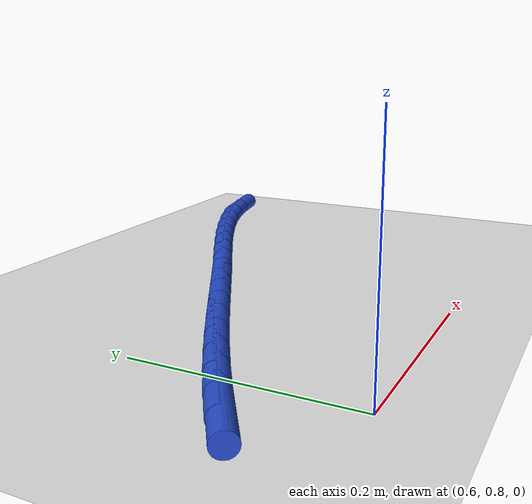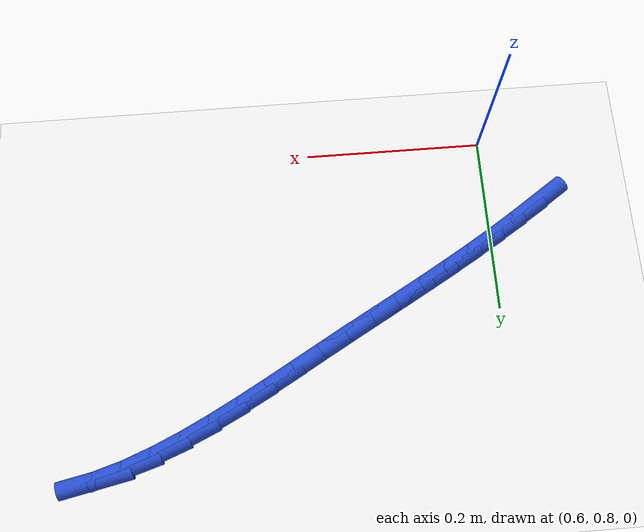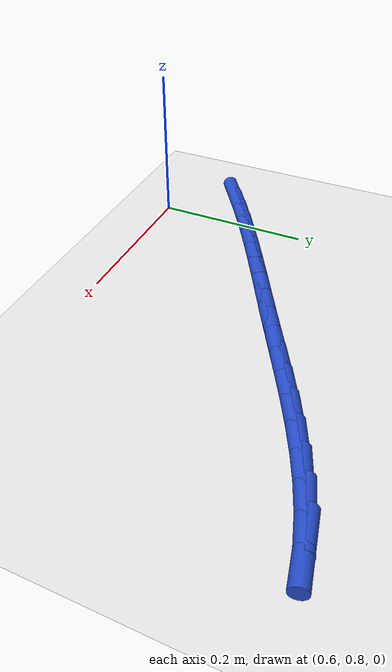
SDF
<sdf version="1.6">
 <world name="default">
  <model name="ground_plane">
   <static>1</static>
   <link name="link">
    <collision name="collision">
     <geometry><plane><normal>0 0 1</normal><size>100 100</size></plane></geometry>
     <surface><friction><ode><mu>100</mu><mu2>50</mu2></ode></friction></surface>
    </collision>
    <visual name="visual">
     <cast_shadows>0</cast_shadows>
     <geometry><plane><normal>0 0 1</normal><size>100 100</size></plane></geometry>
     <material>
      <script><uri>file://media/materials/scripts/gazebo.material</uri><name>Gazebo/WhiteGlow</name></script>
     </material>
    </visual>
   </link>
  </model>
  <model name="line">
   <link name="link_33">
    <pose>0.5446947927871263 0.8828955463730126 0.01 0 1.57 0.5970752957010125</pose>
    <collision name="collision">
     <geometry><cylinder><radius>0.01</radius><length>0.08</length></cylinder></geometry>
    </collision>
    <visual name="visual">
     <material>
      <script><name>Gazebo/Blue</name><uri>file://media/materials/scripts/gazebo.material</uri></script>
     </material>
     <geometry><cylinder><radius>0.01</radius><length>0.08</length></cylinder></geometry>
    </visual>
   </link>
   <link name="link_34">
    <pose>0.5709206144676275 0.9007252178681924 0.01 0 1.57 0.5733649681810913</pose>
    <collision name="collision">
     <geometry><cylinder><radius>0.01</radius><length>0.08</length></cylinder></geometry>
    </collision>
    <visual name="visual">
     <material>
      <script><name>Gazebo/Blue</name><uri>file://media/materials/scripts/gazebo.material</uri></script>
     </material>
     <geometry><cylinder><radius>0.01</radius><length>0.08</length></cylinder></geometry>
    </visual>
   </link>
   <link name="link_35">
    <pose>0.5976518944710318 0.9179863074714997 0.01 0 1.57 0.5535233577818326</pose>
    <collision name="collision">
     <geometry><cylinder><radius>0.01</radius><length>0.08</length></cylinder></geometry>
    </collision>
    <visual name="visual">
     <material>
      <script><name>Gazebo/Blue</name><uri>file://media/materials/scripts/gazebo.material</uri></script>
     </material>
     <geometry><cylinder><radius>0.01</radius><length>0.08</length></cylinder></geometry>
    </visual>
   </link>
   <link name="link_36">
    <pose>0.624883452801448 0.9348144168173574 0.01 0 1.57 0.537623305985912</pose>
    <collision name="collision">
     <geometry><cylinder><radius>0.01</radius><length>0.08</length></cylinder></geometry>
    </collision>
    <visual name="visual">
     <material>
      <script><name>Gazebo/Blue</name><uri>file://media/materials/scripts/gazebo.material</uri></script>
     </material>
     <geometry><cylinder><radius>0.01</radius><length>0.08</length></cylinder></geometry>
    </visual>
   </link>
   <link name="link_37">
    <pose>0.6526101094629863 0.9513451475401883 0.01 0 1.57 0.5256723691486967</pose>
    <collision name="collision">
     <geometry><cylinder><radius>0.01</radius><length>0.08</length></cylinder></geometry>
    </collision>
    <visual name="visual">
     <material>
      <script><name>Gazebo/Blue</name><uri>file://media/materials/scripts/gazebo.material</uri></script>
     </material>
     <geometry><cylinder><radius>0.01</radius><length>0.08</length></cylinder></geometry>
    </visual>
   </link>
   <link name="link_38">
    <pose>0.6808266844597556 0.9677141012744147 0.01 0 1.57 0.5176221398500229</pose>
    <collision name="collision">
     <geometry><cylinder><radius>0.01</radius><length>0.08</length></cylinder></geometry>
    </collision>
    <visual name="visual">
     <material>
      <script><name>Gazebo/Blue</name><uri>file://media/materials/scripts/gazebo.material</uri></script>
     </material>
     <geometry><cylinder><radius>0.01</radius><length>0.08</length></cylinder></geometry>
    </visual>
   </link>
   <link name="link_39">
    <pose>0.7095279977958657 0.9840568796544595 0.01 0 1.57 0.5133772083083311</pose>
    <collision name="collision">
     <geometry><cylinder><radius>0.01</radius><length>0.08</length></cylinder></geometry>
    </collision>
    <visual name="visual">
     <material>
      <script><name>Gazebo/Blue</name><uri>file://media/materials/scripts/gazebo.material</uri></script>
     </material>
     <geometry><cylinder><radius>0.01</radius><length>0.08</length></cylinder></geometry>
    </visual>
   </link>
   <link name="link_40">
    <pose>0.7387088694754264 1.0005090843147462 0.01 0 1.57 0.5128031732810909</pose>
    <collision name="collision">
     <geometry><cylinder><radius>0.01</radius><length>0.08</length></cylinder></geometry>
    </collision>
    <visual name="visual">
     <material>
      <script><name>Gazebo/Blue</name><uri>file://media/materials/scripts/gazebo.material</uri></script>
     </material>
     <geometry><cylinder><radius>0.01</radius><length>0.08</length></cylinder></geometry>
    </visual>
   </link>
   <link name="link_41">
    <pose>0.7683641195025468 1.0172063168896963 0.01 0 1.57 0.5157334553198087</pose>
    <collision name="collision">
     <geometry><cylinder><radius>0.01</radius><length>0.08</length></cylinder></geometry>
    </collision>
    <visual name="visual">
     <material>
      <script><name>Gazebo/Blue</name><uri>file://media/materials/scripts/gazebo.material</uri></script>
     </material>
     <geometry><cylinder><radius>0.01</radius><length>0.08</length></cylinder></geometry>
    </visual>
   </link>
   <link name="link_42">
    <pose>0.7984885678813362 1.034284179013733 0.01 0 1.57 0.5212183942930964</pose>
    <collision name="collision">
     <geometry><cylinder><radius>0.01</radius><length>0.08</length></cylinder></geometry>
    </collision>
    <visual name="visual">
     <material>
      <script><name>Gazebo/Blue</name><uri>file://media/materials/scripts/gazebo.material</uri></script>
     </material>
     <geometry><cylinder><radius>0.01</radius><length>0.08</length></cylinder></geometry>
    </visual>
   </link>
   <link name="link_43">
    <pose>0.8290711453369805 1.051844107110256 0.01 0 1.57 0.5213794743828627</pose>
    <collision name="collision">
     <geometry><cylinder><radius>0.01</radius><length>0.08</length></cylinder></geometry>
    </collision>
    <visual name="visual">
     <material>
      <script><name>Gazebo/Blue</name><uri>file://media/materials/scripts/gazebo.material</uri></script>
     </material>
     <geometry><cylinder><radius>0.01</radius><length>0.08</length></cylinder></geometry>
    </visual>
   </link>
   <link name="link_44">
    <pose>0.860039529277675 1.069632191468146 0.01 0 1.57 0.5118029143572922</pose>
    <collision name="collision">
     <geometry><cylinder><radius>0.01</radius><length>0.08</length></cylinder></geometry>
    </collision>
    <visual name="visual">
     <material>
      <script><name>Gazebo/Blue</name><uri>file://media/materials/scripts/gazebo.material</uri></script>
     </material>
     <geometry><cylinder><radius>0.01</radius><length>0.08</length></cylinder></geometry>
    </visual>
   </link>
   <link name="link_45">
    <pose>0.8912850529848453 1.087183680815452 0.01 0 1.57 0.4922716023065845</pose>
    <collision name="collision">
     <geometry><cylinder><radius>0.01</radius><length>0.08</length></cylinder></geometry>
    </collision>
    <visual name="visual">
     <material>
      <script><name>Gazebo/Blue</name><uri>file://media/materials/scripts/gazebo.material</uri></script>
     </material>
     <geometry><cylinder><radius>0.01</radius><length>0.08</length></cylinder></geometry>
    </visual>
   </link>
   <link name="link_46">
    <pose>0.9226985718743982 1.1040310516603098 0.01 0 1.57 0.462109692796905</pose>
    <collision name="collision">
     <geometry><cylinder><radius>0.01</radius><length>0.08</length></cylinder></geometry>
    </collision>
    <visual name="visual">
     <material>
      <script><name>Gazebo/Blue</name><uri>file://media/materials/scripts/gazebo.material</uri></script>
     </material>
     <geometry><cylinder><radius>0.01</radius><length>0.08</length></cylinder></geometry>
    </visual>
   </link>
   <link name="link_47">
    <pose>0.954170941362239 1.119706780510853 0.01 0 1.57 0.4201148063069758</pose>
    <collision name="collision">
     <geometry><cylinder><radius>0.01</radius><length>0.08</length></cylinder></geometry>
    </collision>
    <visual name="visual">
     <material>
      <script><name>Gazebo/Blue</name><uri>file://media/materials/scripts/gazebo.material</uri></script>
     </material>
     <geometry><cylinder><radius>0.01</radius><length>0.08</length></cylinder></geometry>
    </visual>
   </link>
   <link name="link_48">
    <pose>0.9855930168642739 1.1337433438752158 0.01 0 1.57 0.36454583480245956</pose>
    <collision name="collision">
     <geometry><cylinder><radius>0.01</radius><length>0.08</length></cylinder></geometry>
    </collision>
    <visual name="visual">
     <material>
      <script><name>Gazebo/Blue</name><uri>file://media/materials/scripts/gazebo.material</uri></script>
     </material>
     <geometry><cylinder><radius>0.01</radius><length>0.08</length></cylinder></geometry>
    </visual>
   </link>
   <link name="link_49">
    <pose>1.0168556537964093 1.145673218261533 0.01 0 1.57 0.29315633438910066</pose>
    <collision name="collision">
     <geometry><cylinder><radius>0.01</radius><length>0.08</length></cylinder></geometry>
    </collision>
    <visual name="visual">
     <material>
      <script><name>Gazebo/Blue</name><uri>file://media/materials/scripts/gazebo.material</uri></script>
     </material>
     <geometry><cylinder><radius>0.01</radius><length>0.08</length></cylinder></geometry>
    </visual>
   </link>
   <link name="link_50">
    <pose>1.0478497075745508 1.1550288801779387 0.01 0 1.57 0.2033762307669449</pose>
    <collision name="collision">
     <geometry><cylinder><radius>0.01</radius><length>0.08</length></cylinder></geometry>
    </collision>
    <visual name="visual">
     <material>
      <script><name>Gazebo/Blue</name><uri>file://media/materials/scripts/gazebo.material</uri></script>
     </material>
     <geometry><cylinder><radius>0.01</radius><length>0.08</length></cylinder></geometry>
    </visual>
   </link>
  </model>
 </world>
</sdf>
